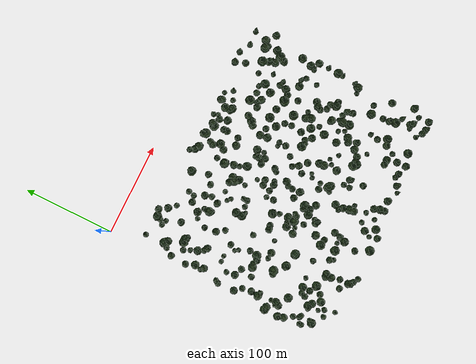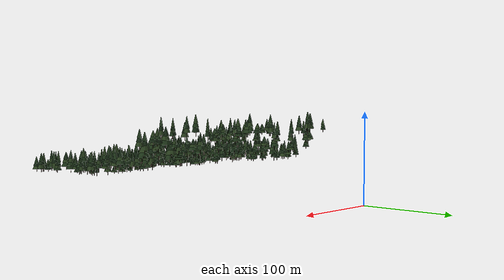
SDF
<?xml version='1.0' encoding='utf-8'?>
<sdf version="1.9">
  <model name="summit_forest_2_1">
    <static>true</static>
    <link name="structure">
      <visual name="visual_trunk">
        <geometry>
          <mesh>
            <uri>model://summit_forest_2_1/meshes/visual/trunk.dae</uri>
          </mesh>
        </geometry>
        <material>
          <ambient>0.19 0.12 0.072 1</ambient>
          <diffuse>0.19 0.12 0.072 1</diffuse>
          <specular>0.15 0.15 0.15 1</specular>
          <pbr>
            <metal>
              <roughness>0.8</roughness>
              <metalness>0.0</metalness>
            </metal>
          </pbr>
        </material>
      </visual>
      <visual name="visual_leaf2">
        <geometry>
          <mesh>
            <uri>model://summit_forest_2_1/meshes/visual/leaf2.dae</uri>
          </mesh>
        </geometry>
        <material>
          <ambient>0.15 0.235 0.105 1</ambient>
          <diffuse>0.15 0.235 0.105 1</diffuse>
          <specular>0.15 0.15 0.15 1</specular>
          <pbr>
            <metal>
              <roughness>0.8</roughness>
              <metalness>0.0</metalness>
            </metal>
          </pbr>
        </material>
      </visual>
      <visual name="visual_leaf0">
        <geometry>
          <mesh>
            <uri>model://summit_forest_2_1/meshes/visual/leaf0.dae</uri>
          </mesh>
        </geometry>
        <material>
          <ambient>0.072 0.145 0.065 1</ambient>
          <diffuse>0.072 0.145 0.065 1</diffuse>
          <specular>0.15 0.15 0.15 1</specular>
          <pbr>
            <metal>
              <roughness>0.8</roughness>
              <metalness>0.0</metalness>
            </metal>
          </pbr>
        </material>
      </visual>
      <visual name="visual_leaf1">
        <geometry>
          <mesh>
            <uri>model://summit_forest_2_1/meshes/visual/leaf1.dae</uri>
          </mesh>
        </geometry>
        <material>
          <ambient>0.105 0.195 0.085 1</ambient>
          <diffuse>0.105 0.195 0.085 1</diffuse>
          <specular>0.15 0.15 0.15 1</specular>
          <pbr>
            <metal>
              <roughness>0.8</roughness>
              <metalness>0.0</metalness>
            </metal>
          </pbr>
        </material>
      </visual>
      <collision name="forest_collision">
        <geometry>
          <mesh>
            <uri>model://summit_forest_2_1/meshes/collision/forest_collision.dae</uri>
          </mesh>
        </geometry>
      </collision>
    </link>
  </model>
</sdf>
